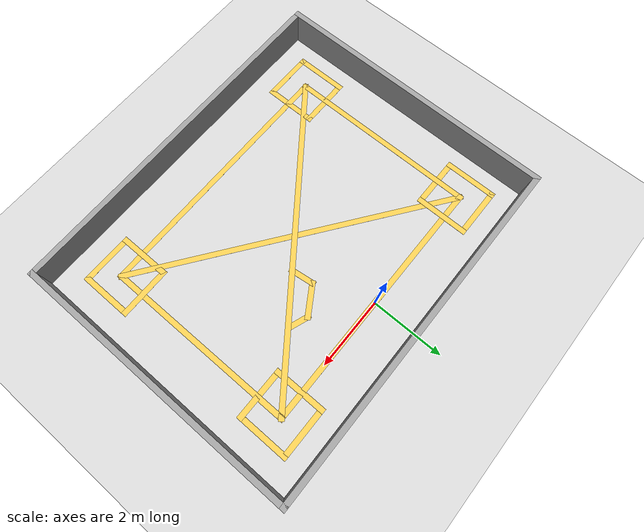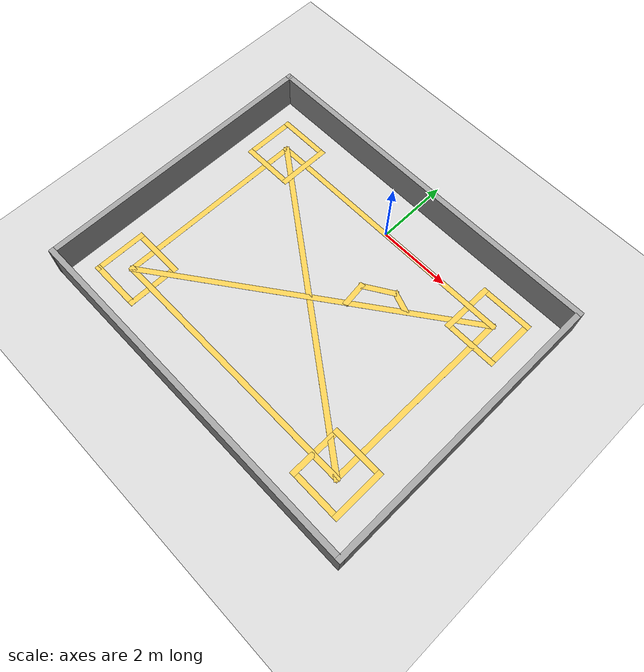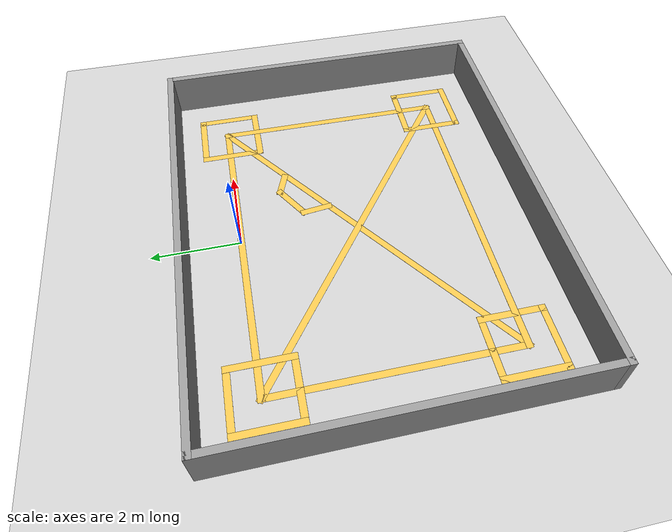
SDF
<sdf version="1.7">
 <world name="default">
  <light name="sun" type="directional">
   <pose>0 0 10 0 -0 0</pose>
   <diffuse>0.8 0.8 0.8 1</diffuse>
   <specular>0.2 0.2 0.2 1</specular>
   <attenuation>
    <range>1000</range>
    <constant>0.9</constant>
    <linear>0.01</linear>
    <quadratic>0.001</quadratic>
   </attenuation>
   <direction>-0.5 0.1 -0.9</direction>
   <spot><inner_angle>0</inner_angle><outer_angle>0</outer_angle><falloff>0</falloff></spot>
  </light>
  <model name="ground_plane">
   <static>1</static>
   <link name="link">
    <collision name="collision">
     <geometry><plane><normal>0 0 1</normal><size>100 100</size></plane></geometry>
     <surface>
      <contact><collide_bitmask>65535</collide_bitmask></contact>
      <friction><ode><mu>100</mu><mu2>50</mu2></ode></friction>
     </surface>
    </collision>
    <visual name="visual">
     <cast_shadows>0</cast_shadows>
     <geometry><plane><normal>0 0 1</normal><size>100 100</size></plane></geometry>
     <material>
      <script><uri>file://media/materials/scripts/gazebo.material</uri><name>Gazebo/Grey</name></script>
     </material>
    </visual>
   </link>
  </model>
  <gravity>0 0 -9.8</gravity>
  <magnetic_field>6e-06 2.3e-05 -4.2e-05</magnetic_field>
  <atmosphere type="adiabatic"/>
  <physics type="ode">
   <max_step_size>0.001</max_step_size>
   <real_time_factor>1</real_time_factor>
   <real_time_update_rate>1000</real_time_update_rate>
  </physics>
  <scene><ambient>0.4 0.4 0.4 1</ambient><background>0.7 0.7 0.7 1</background><shadows>1</shadows></scene>
  <spherical_coordinates>
   <surface_model>EARTH_WGS84</surface_model>
   <latitude_deg>0</latitude_deg>
   <longitude_deg>0</longitude_deg>
   <elevation>0</elevation>
   <heading_deg>0</heading_deg>
  </spherical_coordinates>
  <model name="yarisma_parkur">
   <pose>-0.081761 -2.67418 0 0 -0 0</pose>
   <link name="Wall_53">
    <collision name="Wall_53_Collision">
     <geometry><box><size>1.5 0.15 0.001</size></box></geometry>
     <pose>0 0 0.0005 0 -0 0</pose>
    </collision>
    <visual name="Wall_53_Visual">
     <pose>0 0 0.0005 0 -0 0</pose>
     <geometry><box><size>1.5 0.15 0.001</size></box></geometry>
     <material>
      <script><uri>file://media/materials/scripts/gazebo.material</uri><name>Gazebo/Grey</name></script>
      <ambient>1 0.764706 0.305882 1</ambient>
     </material>
     <meta><layer>0</layer></meta>
    </visual>
    <pose>-4.275 2.6 0 0 -0 -1.5708</pose>
   </link>
   <link name="Wall_54">
    <collision name="Wall_54_Collision">
     <geometry><box><size>1.5 0.15 0.001</size></box></geometry>
     <pose>0 0 0.0005 0 -0 0</pose>
    </collision>
    <visual name="Wall_54_Visual">
     <pose>0 0 0.0005 0 -0 0</pose>
     <geometry><box><size>1.5 0.15 0.001</size></box></geometry>
     <material>
      <script><uri>file://media/materials/scripts/gazebo.material</uri><name>Gazebo/Grey</name></script>
      <ambient>1 0.764706 0.305882 1</ambient>
     </material>
     <meta><layer>0</layer></meta>
    </visual>
    <pose>-3.6 1.925 0 0 -0 0</pose>
   </link>
   <link name="Wall_55">
    <collision name="Wall_55_Collision">
     <geometry><box><size>1.5 0.15 0.002</size></box></geometry>
     <pose>0 0 0.001 0 -0 0</pose>
    </collision>
    <visual name="Wall_55_Visual">
     <pose>0 0 0.001 0 -0 0</pose>
     <geometry><box><size>1.5 0.15 0.002</size></box></geometry>
     <material>
      <script><uri>file://media/materials/scripts/gazebo.material</uri><name>Gazebo/Grey</name></script>
      <ambient>1 0.764706 0.305882 1</ambient>
     </material>
     <meta><layer>0</layer></meta>
    </visual>
    <pose>-2.925 2.6 0 0 -0 1.5708</pose>
   </link>
   <link name="Wall_56">
    <collision name="Wall_56_Collision">
     <geometry><box><size>1.5 0.15 0.001</size></box></geometry>
     <pose>0 0 0.0005 0 -0 0</pose>
    </collision>
    <visual name="Wall_56_Visual">
     <pose>0 0 0.0005 0 -0 0</pose>
     <geometry><box><size>1.5 0.15 0.001</size></box></geometry>
     <material>
      <script><uri>file://media/materials/scripts/gazebo.material</uri><name>Gazebo/Grey</name></script>
      <ambient>1 0.764706 0.305882 1</ambient>
     </material>
     <meta><layer>0</layer></meta>
    </visual>
    <pose>-3.6 3.275 0 0 -0 3.14159</pose>
   </link>
   <link name="Wall_60">
    <collision name="Wall_60_Collision">
     <geometry><box><size>1.5 0.15 0.001</size></box></geometry>
     <pose>0 0 0.0005 0 -0 0</pose>
    </collision>
    <visual name="Wall_60_Visual">
     <pose>0 0 0.0005 0 -0 0</pose>
     <geometry><box><size>1.5 0.15 0.001</size></box></geometry>
     <material>
      <script><uri>file://media/materials/scripts/gazebo.material</uri><name>Gazebo/Grey</name></script>
      <ambient>1 0.764706 0.305882 1</ambient>
     </material>
     <meta><layer>0</layer></meta>
    </visual>
    <pose>-3.6 -1.925 0 0 -0 0</pose>
   </link>
   <link name="Wall_61">
    <collision name="Wall_61_Collision">
     <geometry><box><size>1.5 0.15 0.001</size></box></geometry>
     <pose>0 0 0.0005 0 -0 0</pose>
    </collision>
    <visual name="Wall_61_Visual">
     <pose>0 0 0.0005 0 -0 0</pose>
     <geometry><box><size>1.5 0.15 0.001</size></box></geometry>
     <material>
      <script><uri>file://media/materials/scripts/gazebo.material</uri><name>Gazebo/Grey</name></script>
      <ambient>1 0.764706 0.305882 1</ambient>
     </material>
     <meta><layer>0</layer></meta>
    </visual>
    <pose>-2.925 -2.6 0 0 -0 -1.5708</pose>
   </link>
   <link name="Wall_62">
    <collision name="Wall_62_Collision">
     <geometry><box><size>1.5 0.15 0.001</size></box></geometry>
     <pose>0 0 0.0005 0 -0 0</pose>
    </collision>
    <visual name="Wall_62_Visual">
     <pose>0 0 0.0005 0 -0 0</pose>
     <geometry><box><size>1.5 0.15 0.001</size></box></geometry>
     <material>
      <script><uri>file://media/materials/scripts/gazebo.material</uri><name>Gazebo/Grey</name></script>
      <ambient>1 0.764706 0.305882 1</ambient>
     </material>
     <meta><layer>0</layer></meta>
    </visual>
    <pose>-3.6 -3.275 0 0 -0 3.14159</pose>
   </link>
   <link name="Wall_63">
    <collision name="Wall_63_Collision">
     <geometry><box><size>1.5 0.15 0.001</size></box></geometry>
     <pose>0 0 0.0005 0 -0 0</pose>
    </collision>
    <visual name="Wall_63_Visual">
     <pose>0 0 0.0005 0 -0 0</pose>
     <geometry><box><size>1.5 0.15 0.001</size></box></geometry>
     <material>
      <script><uri>file://media/materials/scripts/gazebo.material</uri><name>Gazebo/Grey</name></script>
      <ambient>1 0.764706 0.305882 1</ambient>
     </material>
     <meta><layer>0</layer></meta>
    </visual>
    <pose>-4.275 -2.6 0 0 -0 1.5708</pose>
   </link>
   <link name="Wall_66">
    <collision name="Wall_66_Collision">
     <geometry><box><size>1.5 0.15 0.001</size></box></geometry>
     <pose>0 0 0.0005 0 -0 0</pose>
    </collision>
    <visual name="Wall_66_Visual">
     <pose>0 0 0.0005 0 -0 0</pose>
     <geometry><box><size>1.5 0.15 0.001</size></box></geometry>
     <material>
      <script><uri>file://media/materials/scripts/gazebo.material</uri><name>Gazebo/Grey</name></script>
      <ambient>1 0.764706 0.305882 1</ambient>
     </material>
     <meta><layer>0</layer></meta>
    </visual>
    <pose>2.925 -2.6 0 0 -0 1.5708</pose>
   </link>
   <link name="Wall_67">
    <collision name="Wall_67_Collision">
     <geometry><box><size>1.5 0.15 0.001</size></box></geometry>
     <pose>0 0 0.0005 0 -0 0</pose>
    </collision>
    <visual name="Wall_67_Visual">
     <pose>0 0 0.0005 0 -0 0</pose>
     <geometry><box><size>1.5 0.15 0.001</size></box></geometry>
     <material>
      <script><uri>file://media/materials/scripts/gazebo.material</uri><name>Gazebo/Grey</name></script>
      <ambient>1 0.764706 0.305882 1</ambient>
     </material>
     <meta><layer>0</layer></meta>
    </visual>
    <pose>3.6 -1.925 0 0 -0 0</pose>
   </link>
   <link name="Wall_68">
    <collision name="Wall_68_Collision">
     <geometry><box><size>1.5 0.15 0.001</size></box></geometry>
     <pose>0 0 0.0005 0 -0 0</pose>
    </collision>
    <visual name="Wall_68_Visual">
     <pose>0 0 0.0005 0 -0 0</pose>
     <geometry><box><size>1.5 0.15 0.001</size></box></geometry>
     <material>
      <script><uri>file://media/materials/scripts/gazebo.material</uri><name>Gazebo/Grey</name></script>
      <ambient>1 0.764706 0.305882 1</ambient>
     </material>
     <meta><layer>0</layer></meta>
    </visual>
    <pose>4.275 -2.6 0 0 -0 -1.5708</pose>
   </link>
   <link name="Wall_69">
    <collision name="Wall_69_Collision">
     <geometry><box><size>1.5 0.15 0.001</size></box></geometry>
     <pose>0 0 0.0005 0 -0 0</pose>
    </collision>
    <visual name="Wall_69_Visual">
     <pose>0 0 0.0005 0 -0 0</pose>
     <geometry><box><size>1.5 0.15 0.001</size></box></geometry>
     <material>
      <script><uri>file://media/materials/scripts/gazebo.material</uri><name>Gazebo/Grey</name></script>
      <ambient>1 0.764706 0.305882 1</ambient>
     </material>
     <meta><layer>0</layer></meta>
    </visual>
    <pose>3.6 -3.275 0 0 -0 3.14159</pose>
   </link>
   <link name="Wall_72">
    <collision name="Wall_72_Collision">
     <geometry><box><size>1.5 0.15 0.001</size></box></geometry>
     <pose>0 0 0.0005 0 -0 0</pose>
    </collision>
    <visual name="Wall_72_Visual">
     <pose>0 0 0.0005 0 -0 0</pose>
     <geometry><box><size>1.5 0.15 0.001</size></box></geometry>
     <material>
      <script><uri>file://media/materials/scripts/gazebo.material</uri><name>Gazebo/Grey</name></script>
      <ambient>1 0.764706 0.305882 1</ambient>
     </material>
     <meta><layer>0</layer></meta>
    </visual>
    <pose>3.6 1.925 0 0 -0 3.14159</pose>
   </link>
   <link name="Wall_74">
    <collision name="Wall_74_Collision">
     <geometry><box><size>1.5 0.15 0.001</size></box></geometry>
     <pose>0 0 0.0005 0 -0 0</pose>
    </collision>
    <visual name="Wall_74_Visual">
     <pose>0 0 0.0005 0 -0 0</pose>
     <geometry><box><size>1.5 0.15 0.001</size></box></geometry>
     <material>
      <script><uri>file://media/materials/scripts/gazebo.material</uri><name>Gazebo/Grey</name></script>
      <ambient>1 0.764706 0.305882 1</ambient>
     </material>
     <meta><layer>0</layer></meta>
    </visual>
    <pose>2.925 2.6 0 0 -0 1.5708</pose>
   </link>
   <link name="Wall_75">
    <collision name="Wall_75_Collision">
     <geometry><box><size>1.5 0.15 0.001</size></box></geometry>
     <pose>0 0 0.0005 0 -0 0</pose>
    </collision>
    <visual name="Wall_75_Visual">
     <pose>0 0 0.0005 0 -0 0</pose>
     <geometry><box><size>1.5 0.15 0.001</size></box></geometry>
     <material>
      <script><uri>file://media/materials/scripts/gazebo.material</uri><name>Gazebo/Grey</name></script>
      <ambient>1 0.764706 0.305882 1</ambient>
     </material>
     <meta><layer>0</layer></meta>
    </visual>
    <pose>3.6 3.275 0 0 -0 0</pose>
   </link>
   <link name="Wall_76">
    <collision name="Wall_76_Collision">
     <geometry><box><size>1.5 0.15 0.001</size></box></geometry>
     <pose>0 0 0.0005 0 -0 0</pose>
    </collision>
    <visual name="Wall_76_Visual">
     <pose>0 0 0.0005 0 -0 0</pose>
     <geometry><box><size>1.5 0.15 0.001</size></box></geometry>
     <material>
      <script><uri>file://media/materials/scripts/gazebo.material</uri><name>Gazebo/Grey</name></script>
      <ambient>1 0.764706 0.305882 1</ambient>
     </material>
     <meta><layer>0</layer></meta>
    </visual>
    <pose>4.275 2.6 0 0 -0 -1.5708</pose>
   </link>
   <link name="Wall_78">
    <collision name="Wall_78_Collision">
     <geometry><box><size>7.5 0.15 0.001</size></box></geometry>
     <pose>0 0 0.0005 0 -0 0</pose>
    </collision>
    <visual name="Wall_78_Visual">
     <pose>0 0 0.0005 0 -0 0</pose>
     <geometry><box><size>7.5 0.15 0.001</size></box></geometry>
     <material>
      <script><uri>file://media/materials/scripts/gazebo.material</uri><name>Gazebo/Grey</name></script>
      <ambient>1 0.764706 0.305882 1</ambient>
     </material>
     <meta><layer>0</layer></meta>
    </visual>
    <pose>0.004 2.671 0 0 -0 0</pose>
   </link>
   <link name="Wall_79">
    <collision name="Wall_79_Collision">
     <geometry><box><size>5.5 0.15 0.001</size></box></geometry>
     <pose>0 0 0.0005 0 -0 0</pose>
    </collision>
    <visual name="Wall_79_Visual">
     <pose>0 0 0.0005 0 -0 0</pose>
     <geometry><box><size>5.5 0.15 0.001</size></box></geometry>
     <material>
      <script><uri>file://media/materials/scripts/gazebo.material</uri><name>Gazebo/Grey</name></script>
      <ambient>1 0.764706 0.305882 1</ambient>
     </material>
     <meta><layer>0</layer></meta>
    </visual>
    <pose>3.679 -0.004 0 0 -0 -1.5708</pose>
   </link>
   <link name="Wall_80">
    <collision name="Wall_80_Collision">
     <geometry><box><size>7.5 0.15 0.001</size></box></geometry>
     <pose>0 0 0.0005 0 -0 0</pose>
    </collision>
    <visual name="Wall_80_Visual">
     <pose>0 0 0.0005 0 -0 0</pose>
     <geometry><box><size>7.5 0.15 0.001</size></box></geometry>
     <material>
      <script><uri>file://media/materials/scripts/gazebo.material</uri><name>Gazebo/Grey</name></script>
      <ambient>1 0.764706 0.305882 1</ambient>
     </material>
     <meta><layer>0</layer></meta>
    </visual>
    <pose>0.004 -2.679 0 0 -0 3.14159</pose>
   </link>
   <link name="Wall_81">
    <collision name="Wall_81_Collision">
     <geometry><box><size>5.5 0.15 0.001</size></box></geometry>
     <pose>0 0 0.0005 0 -0 0</pose>
    </collision>
    <visual name="Wall_81_Visual">
     <pose>0 0 0.0005 0 -0 0</pose>
     <geometry><box><size>5.5 0.15 0.001</size></box></geometry>
     <material>
      <script><uri>file://media/materials/scripts/gazebo.material</uri><name>Gazebo/Grey</name></script>
      <ambient>1 0.764706 0.305882 1</ambient>
     </material>
     <meta><layer>0</layer></meta>
    </visual>
    <pose>-3.671 -0.004 0 0 -0 1.5708</pose>
   </link>
   <link name="Wall_83">
    <collision name="Wall_83_Collision">
     <geometry><box><size>9.24093 0.15 0.001</size></box></geometry>
     <pose>0 0 0.0005 0 -0 0</pose>
    </collision>
    <visual name="Wall_83_Visual">
     <pose>0 0 0.0005 0 -0 0</pose>
     <geometry><box><size>9.24093 0.15 0.001</size></box></geometry>
     <material>
      <script><uri>file://media/materials/scripts/gazebo.material</uri><name>Gazebo/Grey</name></script>
      <ambient>1 0.764706 0.305882 1</ambient>
     </material>
     <meta><layer>0</layer></meta>
    </visual>
    <pose>0.004 -0.004 0 0 -0 -0.629201</pose>
   </link>
   <link name="Wall_85">
    <collision name="Wall_85_Collision">
     <geometry><box><size>9.24093 0.15 0.001</size></box></geometry>
     <pose>0 0 0.0005 0 -0 0</pose>
    </collision>
    <visual name="Wall_85_Visual">
     <pose>0 0 0.0005 0 -0 0</pose>
     <geometry><box><size>9.24093 0.15 0.001</size></box></geometry>
     <material>
      <script><uri>file://media/materials/scripts/gazebo.material</uri><name>Gazebo/Grey</name></script>
      <ambient>1 0.764706 0.305882 1</ambient>
     </material>
     <meta><layer>0</layer></meta>
    </visual>
    <pose>0.004 -0.004 0 0 -0 -2.51239</pose>
   </link>
   <link name="Wall_90">
    <collision name="Wall_90_Collision">
     <geometry><box><size>0.756164 0.15 0.001</size></box></geometry>
     <pose>0 0 0.0005 0 -0 0</pose>
    </collision>
    <visual name="Wall_90_Visual">
     <pose>0 0 0.0005 0 -0 0</pose>
     <geometry><box><size>0.756164 0.15 0.001</size></box></geometry>
     <material>
      <script><uri>file://media/materials/scripts/gazebo.material</uri><name>Gazebo/Grey</name></script>
      <ambient>1 0.764706 0.305882 1</ambient>
     </material>
     <meta><layer>0</layer></meta>
    </visual>
    <pose>0.7255 0.8535 0 0 -0 1.69495</pose>
   </link>
   <link name="Wall_91">
    <collision name="Wall_91_Collision">
     <geometry><box><size>1.02533 0.15 0.001</size></box></geometry>
     <pose>0 0 0.0005 0 -0 0</pose>
    </collision>
    <visual name="Wall_91_Visual">
     <pose>0 0 0.0005 0 -0 0</pose>
     <geometry><box><size>1.02533 0.15 0.001</size></box></geometry>
     <material>
      <script><uri>file://media/materials/scripts/gazebo.material</uri><name>Gazebo/Grey</name></script>
      <ambient>1 0.764706 0.305882 1</ambient>
     </material>
     <meta><layer>0</layer></meta>
    </visual>
    <pose>1.06 1.385 0 0 -0 0.555694</pose>
   </link>
   <link name="Wall_92">
    <collision name="Wall_92_Collision">
     <geometry><box><size>0.672564 0.15 0.001</size></box></geometry>
     <pose>0 0 0.0005 0 -0 0</pose>
    </collision>
    <visual name="Wall_92_Visual">
     <pose>0 0 0.0005 0 -0 0</pose>
     <geometry><box><size>0.672564 0.15 0.001</size></box></geometry>
     <material>
      <script><uri>file://media/materials/scripts/gazebo.material</uri><name>Gazebo/Grey</name></script>
      <ambient>1 0.764706 0.305882 1</ambient>
     </material>
     <meta><layer>0</layer></meta>
    </visual>
    <pose>1.6775 1.527 0 0 -0 -0.347789</pose>
   </link>
   <static>1</static>
  </model>
  <model name="10x8_duvar">
   <pose>0.010033 -2.70018 0 0 -0 0</pose>
   <link name="Wall_25">
    <collision name="Wall_25_Collision">
     <geometry><box><size>10 0.15 1</size></box></geometry>
     <pose>0 0 0.5 0 -0 0</pose>
    </collision>
    <visual name="Wall_25_Visual">
     <pose>0 0 0.5 0 -0 0</pose>
     <geometry><box><size>10 0.15 1</size></box></geometry>
     <material>
      <script><uri>file://media/materials/scripts/gazebo.material</uri><name>Gazebo/Grey</name></script>
      <ambient>1 1 1 1</ambient>
     </material>
     <meta><layer>0</layer></meta>
    </visual>
    <pose>-0 3.925 0 0 -0 0</pose>
   </link>
   <link name="Wall_27">
    <collision name="Wall_27_Collision">
     <geometry><box><size>8 0.15 1</size></box></geometry>
     <pose>0 0 0.5 0 -0 0</pose>
    </collision>
    <visual name="Wall_27_Visual">
     <pose>0 0 0.5 0 -0 0</pose>
     <geometry><box><size>8 0.15 1</size></box></geometry>
     <material>
      <script><uri>file://media/materials/scripts/gazebo.material</uri><name>Gazebo/Grey</name></script>
      <ambient>1 1 1 1</ambient>
     </material>
     <meta><layer>0</layer></meta>
    </visual>
    <pose>4.925 -0 0 0 -0 -1.5708</pose>
   </link>
   <link name="Wall_29">
    <collision name="Wall_29_Collision">
     <geometry><box><size>10 0.15 1</size></box></geometry>
     <pose>0 0 0.5 0 -0 0</pose>
    </collision>
    <visual name="Wall_29_Visual">
     <pose>0 0 0.5 0 -0 0</pose>
     <geometry><box><size>10 0.15 1</size></box></geometry>
     <material>
      <script><uri>file://media/materials/scripts/gazebo.material</uri><name>Gazebo/Grey</name></script>
      <ambient>1 1 1 1</ambient>
     </material>
     <meta><layer>0</layer></meta>
    </visual>
    <pose>-0 -3.925 0 0 -0 3.14159</pose>
   </link>
   <link name="Wall_30">
    <collision name="Wall_30_Collision">
     <geometry><box><size>8 0.15 1</size></box></geometry>
     <pose>0 0 0.5 0 -0 0</pose>
    </collision>
    <visual name="Wall_30_Visual">
     <pose>0 0 0.5 0 -0 0</pose>
     <geometry><box><size>8 0.15 1</size></box></geometry>
     <material>
      <script><uri>file://media/materials/scripts/gazebo.material</uri><name>Gazebo/Grey</name></script>
      <ambient>1 1 1 1</ambient>
     </material>
     <meta><layer>0</layer></meta>
    </visual>
    <pose>-4.925 -0 0 0 -0 1.5708</pose>
   </link>
   <static>1</static>
  </model>
 </world>
</sdf>
